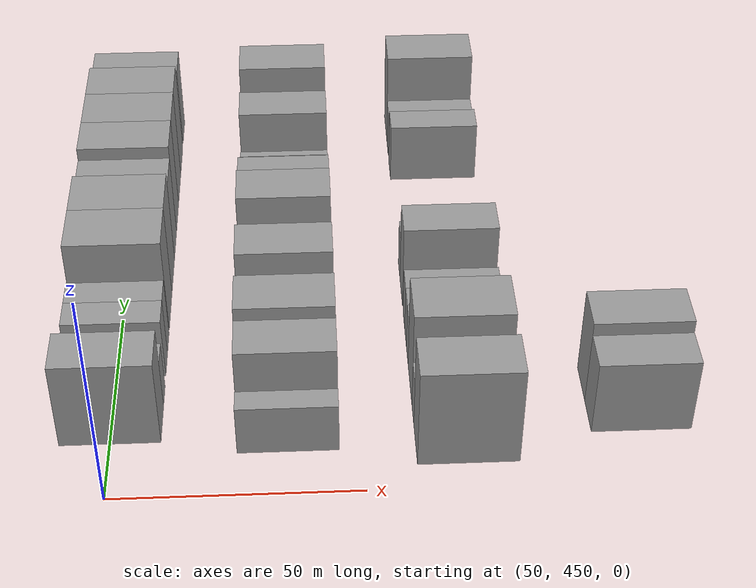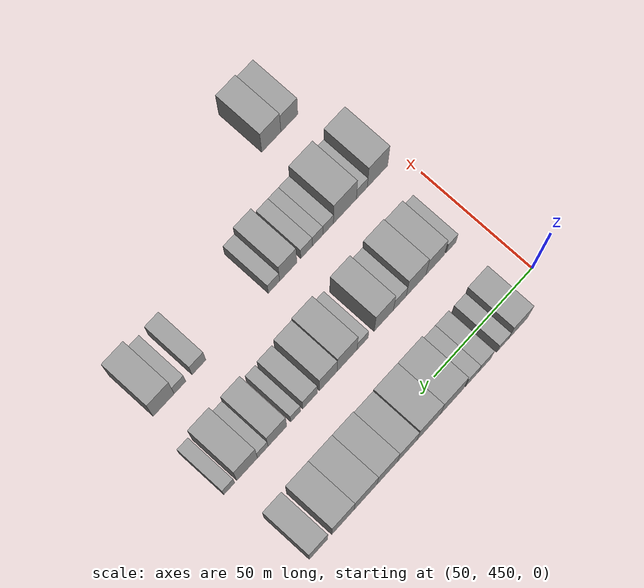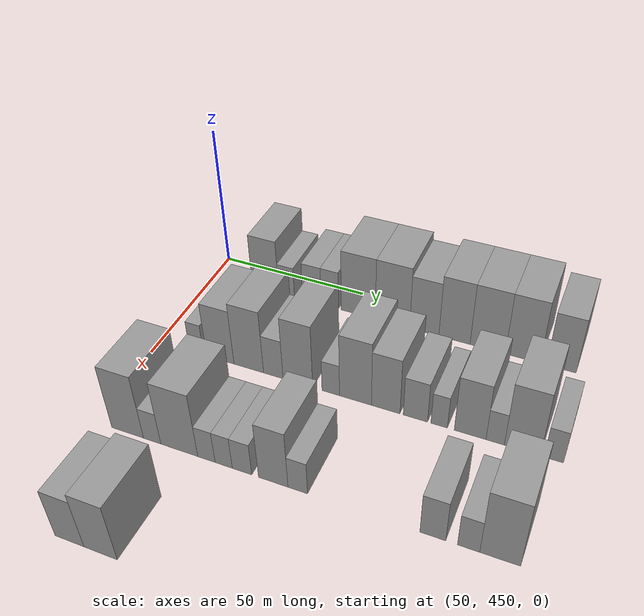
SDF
<sdf version="1.6">
 <world name="default">
  <model name="building_107">
   <static>1</static>
   <pose>50.0000 469.0828 0 0.000000 0.000000 0.000000</pose>
   <link name="link">
    <pose>0 0 10.50 0 0 0</pose>
    <collision name="collision"><geometry><box><size>20.0000 9.7630 21.0000</size></box></geometry></collision>
    <visual name="visual">
     <cast_shadows>0</cast_shadows>
     <geometry><box><size>20.0000 9.7630 21.0000</size></box></geometry>
     <material>
      <script>
       <uri>model://grey_wall/materials/scripts</uri>
       <uri>model://grey_wall/materials/textures</uri>
       <name>vrc/grey_wall</name>
      </script>
     </material>
    </visual>
   </link>
  </model>
  <model name="building_108">
   <static>1</static>
   <pose>50.0000 476.8534 0 0.000000 0.000000 0.000000</pose>
   <link name="link">
    <pose>0 0 6.00 0 0 0</pose>
    <collision name="collision"><geometry><box><size>20.0000 5.7782 12.0000</size></box></geometry></collision>
    <visual name="visual">
     <cast_shadows>0</cast_shadows>
     <geometry><box><size>20.0000 5.7782 12.0000</size></box></geometry>
     <material>
      <script>
       <uri>model://grey_wall/materials/scripts</uri>
       <uri>model://grey_wall/materials/textures</uri>
       <name>vrc/grey_wall</name>
      </script>
     </material>
    </visual>
   </link>
  </model>
  <model name="building_109">
   <static>1</static>
   <pose>50.0000 486.0334 0 0.000000 0.000000 0.000000</pose>
   <link name="link">
    <pose>0 0 7.50 0 0 0</pose>
    <collision name="collision"><geometry><box><size>20.0000 6.5818 15.0000</size></box></geometry></collision>
    <visual name="visual">
     <cast_shadows>0</cast_shadows>
     <geometry><box><size>20.0000 6.5818 15.0000</size></box></geometry>
     <material>
      <script>
       <uri>model://grey_wall/materials/scripts</uri>
       <uri>model://grey_wall/materials/textures</uri>
       <name>vrc/grey_wall</name>
      </script>
     </material>
    </visual>
   </link>
  </model>
  <model name="building_110">
   <static>1</static>
   <pose>50.0000 492.4070 0 0.000000 0.000000 0.000000</pose>
   <link name="link">
    <pose>0 0 7.50 0 0 0</pose>
    <collision name="collision"><geometry><box><size>20.0000 6.1655 15.0000</size></box></geometry></collision>
    <visual name="visual">
     <cast_shadows>0</cast_shadows>
     <geometry><box><size>20.0000 6.1655 15.0000</size></box></geometry>
     <material>
      <script>
       <uri>model://grey_wall/materials/scripts</uri>
       <uri>model://grey_wall/materials/textures</uri>
       <name>vrc/grey_wall</name>
      </script>
     </material>
    </visual>
   </link>
  </model>
  <model name="building_111">
   <static>1</static>
   <pose>50.0000 502.3611 0 0.000000 0.000000 0.000000</pose>
   <link name="link">
    <pose>0 0 12.00 0 0 0</pose>
    <collision name="collision"><geometry><box><size>20.0000 11.7425 24.0000</size></box></geometry></collision>
    <visual name="visual">
     <cast_shadows>0</cast_shadows>
     <geometry><box><size>20.0000 11.7425 24.0000</size></box></geometry>
     <material>
      <script>
       <uri>model://grey_wall/materials/scripts</uri>
       <uri>model://grey_wall/materials/textures</uri>
       <name>vrc/grey_wall</name>
      </script>
     </material>
    </visual>
   </link>
  </model>
  <model name="building_112">
   <static>1</static>
   <pose>50.0000 514.0625 0 0.000000 0.000000 0.000000</pose>
   <link name="link">
    <pose>0 0 12.00 0 0 0</pose>
    <collision name="collision"><geometry><box><size>20.0000 11.6603 24.0000</size></box></geometry></collision>
    <visual name="visual">
     <cast_shadows>0</cast_shadows>
     <geometry><box><size>20.0000 11.6603 24.0000</size></box></geometry>
     <material>
      <script>
       <uri>model://grey_wall/materials/scripts</uri>
       <uri>model://grey_wall/materials/textures</uri>
       <name>vrc/grey_wall</name>
      </script>
     </material>
    </visual>
   </link>
  </model>
  <model name="building_113">
   <static>1</static>
   <pose>50.0000 524.7127 0 0.000000 0.000000 0.000000</pose>
   <link name="link">
    <pose>0 0 10.50 0 0 0</pose>
    <collision name="collision"><geometry><box><size>20.0000 9.6402 21.0000</size></box></geometry></collision>
    <visual name="visual">
     <cast_shadows>0</cast_shadows>
     <geometry><box><size>20.0000 9.6402 21.0000</size></box></geometry>
     <material>
      <script>
       <uri>model://grey_wall/materials/scripts</uri>
       <uri>model://grey_wall/materials/textures</uri>
       <name>vrc/grey_wall</name>
      </script>
     </material>
    </visual>
   </link>
  </model>
  <model name="building_114">
   <static>1</static>
   <pose>50.0000 534.5840 0 0.000000 0.000000 0.000000</pose>
   <link name="link">
    <pose>0 0 12.00 0 0 0</pose>
    <collision name="collision"><geometry><box><size>20.0000 10.1022 24.0000</size></box></geometry></collision>
    <visual name="visual">
     <cast_shadows>0</cast_shadows>
     <geometry><box><size>20.0000 10.1022 24.0000</size></box></geometry>
     <material>
      <script>
       <uri>model://grey_wall/materials/scripts</uri>
       <uri>model://grey_wall/materials/textures</uri>
       <name>vrc/grey_wall</name>
      </script>
     </material>
    </visual>
   </link>
  </model>
  <model name="building_115">
   <static>1</static>
   <pose>50.0000 545.2295 0 0.000000 0.000000 0.000000</pose>
   <link name="link">
    <pose>0 0 12.00 0 0 0</pose>
    <collision name="collision"><geometry><box><size>20.0000 11.1888 24.0000</size></box></geometry></collision>
    <visual name="visual">
     <cast_shadows>0</cast_shadows>
     <geometry><box><size>20.0000 11.1888 24.0000</size></box></geometry>
     <material>
      <script>
       <uri>model://grey_wall/materials/scripts</uri>
       <uri>model://grey_wall/materials/textures</uri>
       <name>vrc/grey_wall</name>
      </script>
     </material>
    </visual>
   </link>
  </model>
  <model name="building_116">
   <static>1</static>
   <pose>50.0000 556.2054 0 0.000000 0.000000 0.000000</pose>
   <link name="link">
    <pose>0 0 12.00 0 0 0</pose>
    <collision name="collision"><geometry><box><size>20.0000 10.7631 24.0000</size></box></geometry></collision>
    <visual name="visual">
     <cast_shadows>0</cast_shadows>
     <geometry><box><size>20.0000 10.7631 24.0000</size></box></geometry>
     <material>
      <script>
       <uri>model://grey_wall/materials/scripts</uri>
       <uri>model://grey_wall/materials/textures</uri>
       <name>vrc/grey_wall</name>
      </script>
     </material>
    </visual>
   </link>
  </model>
  <model name="building_117">
   <static>1</static>
   <pose>50.0000 568.0357 0 0.000000 0.000000 0.000000</pose>
   <link name="link">
    <pose>0 0 10.50 0 0 0</pose>
    <collision name="collision"><geometry><box><size>20.0000 8.8975 21.0000</size></box></geometry></collision>
    <visual name="visual">
     <cast_shadows>0</cast_shadows>
     <geometry><box><size>20.0000 8.8975 21.0000</size></box></geometry>
     <material>
      <script>
       <uri>model://grey_wall/materials/scripts</uri>
       <uri>model://grey_wall/materials/textures</uri>
       <name>vrc/grey_wall</name>
      </script>
     </material>
    </visual>
   </link>
  </model>
  <model name="building_230">
   <static>1</static>
   <pose>85.0000 463.1246 0 0.000000 0.000000 0.000000</pose>
   <link name="link">
    <pose>0 0 6.00 0 0 0</pose>
    <collision name="collision"><geometry><box><size>20.0000 4.8823 12.0000</size></box></geometry></collision>
    <visual name="visual">
     <cast_shadows>0</cast_shadows>
     <geometry><box><size>20.0000 4.8823 12.0000</size></box></geometry>
     <material>
      <script>
       <uri>model://grey_wall/materials/scripts</uri>
       <uri>model://grey_wall/materials/textures</uri>
       <name>vrc/grey_wall</name>
      </script>
     </material>
    </visual>
   </link>
  </model>
  <model name="building_231">
   <static>1</static>
   <pose>85.0000 471.2781 0 0.000000 0.000000 0.000000</pose>
   <link name="link">
    <pose>0 0 10.50 0 0 0</pose>
    <collision name="collision"><geometry><box><size>20.0000 9.4247 21.0000</size></box></geometry></collision>
    <visual name="visual">
     <cast_shadows>0</cast_shadows>
     <geometry><box><size>20.0000 9.4247 21.0000</size></box></geometry>
     <material>
      <script>
       <uri>model://grey_wall/materials/scripts</uri>
       <uri>model://grey_wall/materials/textures</uri>
       <name>vrc/grey_wall</name>
      </script>
     </material>
    </visual>
   </link>
  </model>
  <model name="building_232">
   <static>1</static>
   <pose>85.0000 480.9673 0 0.000000 0.000000 0.000000</pose>
   <link name="link">
    <pose>0 0 12.00 0 0 0</pose>
    <collision name="collision"><geometry><box><size>20.0000 9.9538 24.0000</size></box></geometry></collision>
    <visual name="visual">
     <cast_shadows>0</cast_shadows>
     <geometry><box><size>20.0000 9.9538 24.0000</size></box></geometry>
     <material>
      <script>
       <uri>model://grey_wall/materials/scripts</uri>
       <uri>model://grey_wall/materials/textures</uri>
       <name>vrc/grey_wall</name>
      </script>
     </material>
    </visual>
   </link>
  </model>
  <model name="building_233">
   <static>1</static>
   <pose>85.0000 489.1557 0 0.000000 0.000000 0.000000</pose>
   <link name="link">
    <pose>0 0 7.50 0 0 0</pose>
    <collision name="collision"><geometry><box><size>20.0000 6.4229 15.0000</size></box></geometry></collision>
    <visual name="visual">
     <cast_shadows>0</cast_shadows>
     <geometry><box><size>20.0000 6.4229 15.0000</size></box></geometry>
     <material>
      <script>
       <uri>model://grey_wall/materials/scripts</uri>
       <uri>model://grey_wall/materials/textures</uri>
       <name>vrc/grey_wall</name>
      </script>
     </material>
    </visual>
   </link>
  </model>
  <model name="building_234">
   <static>1</static>
   <pose>85.0000 497.1807 0 0.000000 0.000000 0.000000</pose>
   <link name="link">
    <pose>0 0 12.00 0 0 0</pose>
    <collision name="collision"><geometry><box><size>20.0000 9.6271 24.0000</size></box></geometry></collision>
    <visual name="visual">
     <cast_shadows>0</cast_shadows>
     <geometry><box><size>20.0000 9.6271 24.0000</size></box></geometry>
     <material>
      <script>
       <uri>model://grey_wall/materials/scripts</uri>
       <uri>model://grey_wall/materials/textures</uri>
       <name>vrc/grey_wall</name>
      </script>
     </material>
    </visual>
   </link>
  </model>
  <model name="building_235">
   <static>1</static>
   <pose>85.0000 507.7611 0 0.000000 0.000000 0.000000</pose>
   <link name="link">
    <pose>0 0 6.00 0 0 0</pose>
    <collision name="collision"><geometry><box><size>20.0000 5.5336 12.0000</size></box></geometry></collision>
    <visual name="visual">
     <cast_shadows>0</cast_shadows>
     <geometry><box><size>20.0000 5.5336 12.0000</size></box></geometry>
     <material>
      <script>
       <uri>model://grey_wall/materials/scripts</uri>
       <uri>model://grey_wall/materials/textures</uri>
       <name>vrc/grey_wall</name>
      </script>
     </material>
    </visual>
   </link>
  </model>
  <model name="building_236">
   <static>1</static>
   <pose>85.0000 515.4776 0 0.000000 0.000000 0.000000</pose>
   <link name="link">
    <pose>0 0 12.00 0 0 0</pose>
    <collision name="collision"><geometry><box><size>20.0000 9.8996 24.0000</size></box></geometry></collision>
    <visual name="visual">
     <cast_shadows>0</cast_shadows>
     <geometry><box><size>20.0000 9.8996 24.0000</size></box></geometry>
     <material>
      <script>
       <uri>model://grey_wall/materials/scripts</uri>
       <uri>model://grey_wall/materials/textures</uri>
       <name>vrc/grey_wall</name>
      </script>
     </material>
    </visual>
   </link>
  </model>
  <model name="building_237">
   <static>1</static>
   <pose>85.0000 524.7871 0 0.000000 0.000000 0.000000</pose>
   <link name="link">
    <pose>0 0 10.50 0 0 0</pose>
    <collision name="collision"><geometry><box><size>20.0000 8.7194 21.0000</size></box></geometry></collision>
    <visual name="visual">
     <cast_shadows>0</cast_shadows>
     <geometry><box><size>20.0000 8.7194 21.0000</size></box></geometry>
     <material>
      <script>
       <uri>model://grey_wall/materials/scripts</uri>
       <uri>model://grey_wall/materials/textures</uri>
       <name>vrc/grey_wall</name>
      </script>
     </material>
    </visual>
   </link>
  </model>
  <model name="building_238">
   <static>1</static>
   <pose>85.0000 533.7659 0 0.000000 0.000000 0.000000</pose>
   <link name="link">
    <pose>0 0 7.50 0 0 0</pose>
    <collision name="collision"><geometry><box><size>20.0000 7.2380 15.0000</size></box></geometry></collision>
    <visual name="visual">
     <cast_shadows>0</cast_shadows>
     <geometry><box><size>20.0000 7.2380 15.0000</size></box></geometry>
     <material>
      <script>
       <uri>model://grey_wall/materials/scripts</uri>
       <uri>model://grey_wall/materials/textures</uri>
       <name>vrc/grey_wall</name>
      </script>
     </material>
    </visual>
   </link>
  </model>
  <model name="building_239">
   <static>1</static>
   <pose>85.0000 540.8009 0 0.000000 0.000000 0.000000</pose>
   <link name="link">
    <pose>0 0 6.00 0 0 0</pose>
    <collision name="collision"><geometry><box><size>20.0000 4.8321 12.0000</size></box></geometry></collision>
    <visual name="visual">
     <cast_shadows>0</cast_shadows>
     <geometry><box><size>20.0000 4.8321 12.0000</size></box></geometry>
     <material>
      <script>
       <uri>model://grey_wall/materials/scripts</uri>
       <uri>model://grey_wall/materials/textures</uri>
       <name>vrc/grey_wall</name>
      </script>
     </material>
    </visual>
   </link>
  </model>
  <model name="building_240">
   <static>1</static>
   <pose>85.0000 549.7596 0 0.000000 0.000000 0.000000</pose>
   <link name="link">
    <pose>0 0 10.50 0 0 0</pose>
    <collision name="collision"><geometry><box><size>20.0000 9.0853 21.0000</size></box></geometry></collision>
    <visual name="visual">
     <cast_shadows>0</cast_shadows>
     <geometry><box><size>20.0000 9.0853 21.0000</size></box></geometry>
     <material>
      <script>
       <uri>model://grey_wall/materials/scripts</uri>
       <uri>model://grey_wall/materials/textures</uri>
       <name>vrc/grey_wall</name>
      </script>
     </material>
    </visual>
   </link>
  </model>
  <model name="building_241">
   <static>1</static>
   <pose>85.0000 556.8891 0 0.000000 0.000000 0.000000</pose>
   <link name="link">
    <pose>0 0 6.00 0 0 0</pose>
    <collision name="collision"><geometry><box><size>20.0000 5.1736 12.0000</size></box></geometry></collision>
    <visual name="visual">
     <cast_shadows>0</cast_shadows>
     <geometry><box><size>20.0000 5.1736 12.0000</size></box></geometry>
     <material>
      <script>
       <uri>model://grey_wall/materials/scripts</uri>
       <uri>model://grey_wall/materials/textures</uri>
       <name>vrc/grey_wall</name>
      </script>
     </material>
    </visual>
   </link>
  </model>
  <model name="building_242">
   <static>1</static>
   <pose>85.0000 564.4912 0 0.000000 0.000000 0.000000</pose>
   <link name="link">
    <pose>0 0 12.00 0 0 0</pose>
    <collision name="collision"><geometry><box><size>20.0000 10.0307 24.0000</size></box></geometry></collision>
    <visual name="visual">
     <cast_shadows>0</cast_shadows>
     <geometry><box><size>20.0000 10.0307 24.0000</size></box></geometry>
     <material>
      <script>
       <uri>model://grey_wall/materials/scripts</uri>
       <uri>model://grey_wall/materials/textures</uri>
       <name>vrc/grey_wall</name>
      </script>
     </material>
    </visual>
   </link>
  </model>
  <model name="building_243">
   <static>1</static>
   <pose>85.0000 573.1451 0 0.000000 0.000000 0.000000</pose>
   <link name="link">
    <pose>0 0 6.00 0 0 0</pose>
    <collision name="collision"><geometry><box><size>20.0000 5.2771 12.0000</size></box></geometry></collision>
    <visual name="visual">
     <cast_shadows>0</cast_shadows>
     <geometry><box><size>20.0000 5.2771 12.0000</size></box></geometry>
     <material>
      <script>
       <uri>model://grey_wall/materials/scripts</uri>
       <uri>model://grey_wall/materials/textures</uri>
       <name>vrc/grey_wall</name>
      </script>
     </material>
    </visual>
   </link>
  </model>
  <model name="building_353">
   <static>1</static>
   <pose>120.0000 461.3247 0 0.000000 0.000000 0.000000</pose>
   <link name="link">
    <pose>0 0 12.00 0 0 0</pose>
    <collision name="collision"><geometry><box><size>20.0000 10.3523 24.0000</size></box></geometry></collision>
    <visual name="visual">
     <cast_shadows>0</cast_shadows>
     <geometry><box><size>20.0000 10.3523 24.0000</size></box></geometry>
     <material>
      <script>
       <uri>model://grey_wall/materials/scripts</uri>
       <uri>model://grey_wall/materials/textures</uri>
       <name>vrc/grey_wall</name>
      </script>
     </material>
    </visual>
   </link>
  </model>
  <model name="building_354">
   <static>1</static>
   <pose>120.0000 469.2791 0 0.000000 0.000000 0.000000</pose>
   <link name="link">
    <pose>0 0 6.00 0 0 0</pose>
    <collision name="collision"><geometry><box><size>20.0000 5.5566 12.0000</size></box></geometry></collision>
    <visual name="visual">
     <cast_shadows>0</cast_shadows>
     <geometry><box><size>20.0000 5.5566 12.0000</size></box></geometry>
     <material>
      <script>
       <uri>model://grey_wall/materials/scripts</uri>
       <uri>model://grey_wall/materials/textures</uri>
       <name>vrc/grey_wall</name>
      </script>
     </material>
    </visual>
   </link>
  </model>
  <model name="building_355">
   <static>1</static>
   <pose>120.0000 477.8535 0 0.000000 0.000000 0.000000</pose>
   <link name="link">
    <pose>0 0 12.00 0 0 0</pose>
    <collision name="collision"><geometry><box><size>20.0000 11.5922 24.0000</size></box></geometry></collision>
    <visual name="visual">
     <cast_shadows>0</cast_shadows>
     <geometry><box><size>20.0000 11.5922 24.0000</size></box></geometry>
     <material>
      <script>
       <uri>model://grey_wall/materials/scripts</uri>
       <uri>model://grey_wall/materials/textures</uri>
       <name>vrc/grey_wall</name>
      </script>
     </material>
    </visual>
   </link>
  </model>
  <model name="building_356">
   <static>1</static>
   <pose>120.0000 486.3181 0 0.000000 0.000000 0.000000</pose>
   <link name="link">
    <pose>0 0 6.00 0 0 0</pose>
    <collision name="collision"><geometry><box><size>20.0000 5.3369 12.0000</size></box></geometry></collision>
    <visual name="visual">
     <cast_shadows>0</cast_shadows>
     <geometry><box><size>20.0000 5.3369 12.0000</size></box></geometry>
     <material>
      <script>
       <uri>model://grey_wall/materials/scripts</uri>
       <uri>model://grey_wall/materials/textures</uri>
       <name>vrc/grey_wall</name>
      </script>
     </material>
    </visual>
   </link>
  </model>
  <model name="building_357">
   <static>1</static>
   <pose>120.0000 491.5768 0 0.000000 0.000000 0.000000</pose>
   <link name="link">
    <pose>0 0 6.00 0 0 0</pose>
    <collision name="collision"><geometry><box><size>20.0000 5.1805 12.0000</size></box></geometry></collision>
    <visual name="visual">
     <cast_shadows>0</cast_shadows>
     <geometry><box><size>20.0000 5.1805 12.0000</size></box></geometry>
     <material>
      <script>
       <uri>model://grey_wall/materials/scripts</uri>
       <uri>model://grey_wall/materials/textures</uri>
       <name>vrc/grey_wall</name>
      </script>
     </material>
    </visual>
   </link>
  </model>
  <model name="building_358">
   <static>1</static>
   <pose>120.0000 497.0789 0 0.000000 0.000000 0.000000</pose>
   <link name="link">
    <pose>0 0 6.00 0 0 0</pose>
    <collision name="collision"><geometry><box><size>20.0000 5.8236 12.0000</size></box></geometry></collision>
    <visual name="visual">
     <cast_shadows>0</cast_shadows>
     <geometry><box><size>20.0000 5.8236 12.0000</size></box></geometry>
     <material>
      <script>
       <uri>model://grey_wall/materials/scripts</uri>
       <uri>model://grey_wall/materials/textures</uri>
       <name>vrc/grey_wall</name>
      </script>
     </material>
    </visual>
   </link>
  </model>
  <model name="building_359">
   <static>1</static>
   <pose>120.0000 506.2852 0 0.000000 0.000000 0.000000</pose>
   <link name="link">
    <pose>0 0 10.50 0 0 0</pose>
    <collision name="collision"><geometry><box><size>20.0000 8.5891 21.0000</size></box></geometry></collision>
    <visual name="visual">
     <cast_shadows>0</cast_shadows>
     <geometry><box><size>20.0000 8.5891 21.0000</size></box></geometry>
     <material>
      <script>
       <uri>model://grey_wall/materials/scripts</uri>
       <uri>model://grey_wall/materials/textures</uri>
       <name>vrc/grey_wall</name>
      </script>
     </material>
    </visual>
   </link>
  </model>
  <model name="building_360">
   <static>1</static>
   <pose>120.0000 513.3887 0 0.000000 0.000000 0.000000</pose>
   <link name="link">
    <pose>0 0 6.00 0 0 0</pose>
    <collision name="collision"><geometry><box><size>20.0000 5.6178 12.0000</size></box></geometry></collision>
    <visual name="visual">
     <cast_shadows>0</cast_shadows>
     <geometry><box><size>20.0000 5.6178 12.0000</size></box></geometry>
     <material>
      <script>
       <uri>model://grey_wall/materials/scripts</uri>
       <uri>model://grey_wall/materials/textures</uri>
       <name>vrc/grey_wall</name>
      </script>
     </material>
    </visual>
   </link>
  </model>
  <model name="building_361">
   <static>1</static>
   <pose>120.0000 550.3050 0 0.000000 0.000000 0.000000</pose>
   <link name="link">
    <pose>0 0 7.50 0 0 0</pose>
    <collision name="collision"><geometry><box><size>20.0000 6.7383 15.0000</size></box></geometry></collision>
    <visual name="visual">
     <cast_shadows>0</cast_shadows>
     <geometry><box><size>20.0000 6.7383 15.0000</size></box></geometry>
     <material>
      <script>
       <uri>model://grey_wall/materials/scripts</uri>
       <uri>model://grey_wall/materials/textures</uri>
       <name>vrc/grey_wall</name>
      </script>
     </material>
    </visual>
   </link>
  </model>
  <model name="building_362">
   <static>1</static>
   <pose>120.0000 559.4986 0 0.000000 0.000000 0.000000</pose>
   <link name="link">
    <pose>0 0 6.00 0 0 0</pose>
    <collision name="collision"><geometry><box><size>20.0000 5.6490 12.0000</size></box></geometry></collision>
    <visual name="visual">
     <cast_shadows>0</cast_shadows>
     <geometry><box><size>20.0000 5.6490 12.0000</size></box></geometry>
     <material>
      <script>
       <uri>model://grey_wall/materials/scripts</uri>
       <uri>model://grey_wall/materials/textures</uri>
       <name>vrc/grey_wall</name>
      </script>
     </material>
    </visual>
   </link>
  </model>
  <model name="building_363">
   <static>1</static>
   <pose>120.0000 567.4306 0 0.000000 0.000000 0.000000</pose>
   <link name="link">
    <pose>0 0 12.00 0 0 0</pose>
    <collision name="collision"><geometry><box><size>20.0000 10.2149 24.0000</size></box></geometry></collision>
    <visual name="visual">
     <cast_shadows>0</cast_shadows>
     <geometry><box><size>20.0000 10.2149 24.0000</size></box></geometry>
     <material>
      <script>
       <uri>model://grey_wall/materials/scripts</uri>
       <uri>model://grey_wall/materials/textures</uri>
       <name>vrc/grey_wall</name>
      </script>
     </material>
    </visual>
   </link>
  </model>
  <model name="building_476">
   <static>1</static>
   <pose>155.0000 467.5434 0 0.000000 0.000000 0.000000</pose>
   <link name="link">
    <pose>0 0 9.00 0 0 0</pose>
    <collision name="collision"><geometry><box><size>20.0000 8.5527 18.0000</size></box></geometry></collision>
    <visual name="visual">
     <cast_shadows>0</cast_shadows>
     <geometry><box><size>20.0000 8.5527 18.0000</size></box></geometry>
     <material>
      <script>
       <uri>model://grey_wall/materials/scripts</uri>
       <uri>model://grey_wall/materials/textures</uri>
       <name>vrc/grey_wall</name>
      </script>
     </material>
    </visual>
   </link>
  </model>
  <model name="building_477">
   <static>1</static>
   <pose>155.0000 476.6463 0 0.000000 0.000000 0.000000</pose>
   <link name="link">
    <pose>0 0 10.50 0 0 0</pose>
    <collision name="collision"><geometry><box><size>20.0000 9.6530 21.0000</size></box></geometry></collision>
    <visual name="visual">
     <cast_shadows>0</cast_shadows>
     <geometry><box><size>20.0000 9.6530 21.0000</size></box></geometry>
     <material>
      <script>
       <uri>model://grey_wall/materials/scripts</uri>
       <uri>model://grey_wall/materials/textures</uri>
       <name>vrc/grey_wall</name>
      </script>
     </material>
    </visual>
   </link>
  </model>
 </world>
</sdf>
